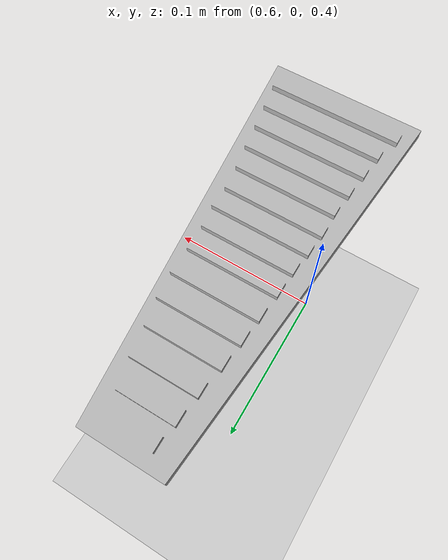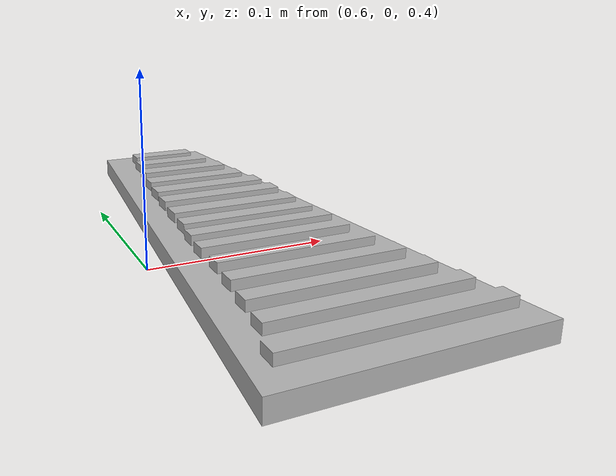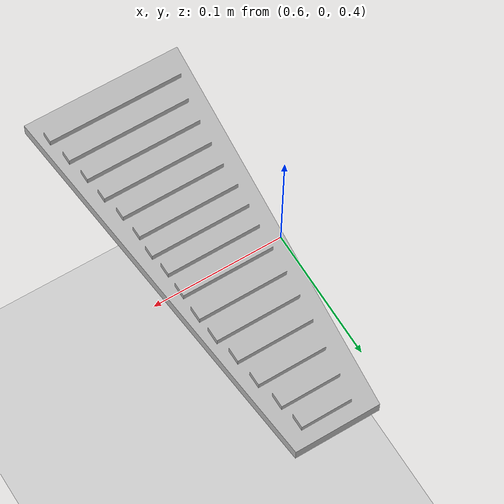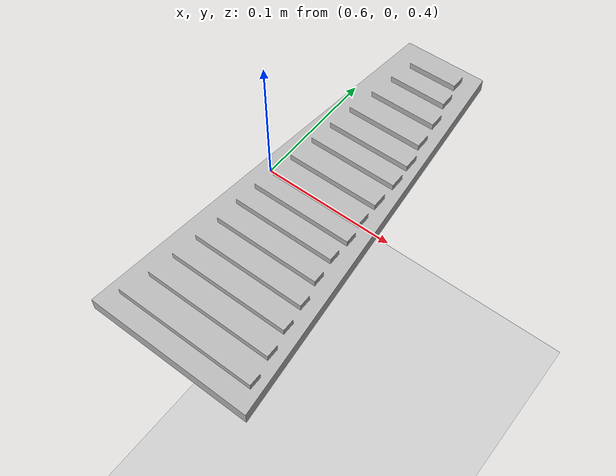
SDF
<sdf version="1.6">
 <world name="default">
  <light name="sun" type="directional">
   <pose>0 0 10 0 -0 0</pose>
   <diffuse>0.8 0.8 0.8 1</diffuse>
   <specular>0.2 0.2 0.2 1</specular>
   <attenuation>
    <range>1000</range>
    <constant>0.9</constant>
    <linear>0.01</linear>
    <quadratic>0.001</quadratic>
   </attenuation>
   <direction>-0.5 0.1 -0.9</direction>
  </light>
  <model name="ground_plane">
   <static>1</static>
   <link name="link">
    <collision name="collision">
     <geometry><plane><normal>0 0 1</normal><size>100 100</size></plane></geometry>
     <surface>
      <contact><collide_bitmask>65535</collide_bitmask></contact>
      <friction><ode><mu>100</mu><mu2>50</mu2></ode></friction>
     </surface>
    </collision>
    <visual name="visual">
     <cast_shadows>0</cast_shadows>
     <geometry><plane><normal>0 0 1</normal><size>100 100</size></plane></geometry>
     <material>
      <script><uri>file://media/materials/scripts/gazebo.material</uri><name>Gazebo/Grey</name></script>
     </material>
    </visual>
   </link>
  </model>
  <gravity>0 0 -9.8</gravity>
  <magnetic_field>6e-06 2.3e-05 -4.2e-05</magnetic_field>
  <atmosphere type="adiabatic"/>
  <physics name="default_physics" default="0" type="ode">
   <max_step_size>0.001</max_step_size>
   <real_time_factor>1</real_time_factor>
   <real_time_update_rate>1000</real_time_update_rate>
  </physics>
  <scene><ambient>0.4 0.4 0.4 1</ambient><background>0.7 0.7 0.7 1</background><shadows>1</shadows></scene>
  <audio><device>default</device></audio>
  <spherical_coordinates>
   <surface_model>EARTH_WGS84</surface_model>
   <latitude_deg>0</latitude_deg>
   <longitude_deg>0</longitude_deg>
   <elevation>0</elevation>
   <heading_deg>0</heading_deg>
  </spherical_coordinates>
  <model name="qin">
   <static>1</static>
   <link name="base_link">
    <inertial>
     <pose>0.026044 -0.001815 0.006198 0 -0 0</pose>
     <mass>0.33203</mass>
     <inertia>
      <ixx>0.0002513</ixx>
      <ixy>-1.5475e-06</ixy>
      <ixz>-6.3224e-07</ixz>
      <iyy>0.0023575</iyy>
      <iyz>6.2199e-07</iyz>
      <izz>0.0025989</izz>
     </inertia>
    </inertial>
    <collision name="base_link_collision">
     <geometry><mesh><scale>1 1 1</scale><uri>model://qin/meshes/base_link.STL</uri></mesh></geometry>
    </collision>
    <visual name="base_link_visual">
     <geometry><mesh><scale>1 1 1</scale><uri>model://qin/meshes/base_link.STL</uri></mesh></geometry>
    </visual>
   </link>
   <pose>0.647585 -0.046443 0.411587 0 -0 1.57362</pose>
  </model>
 </world>
</sdf>
